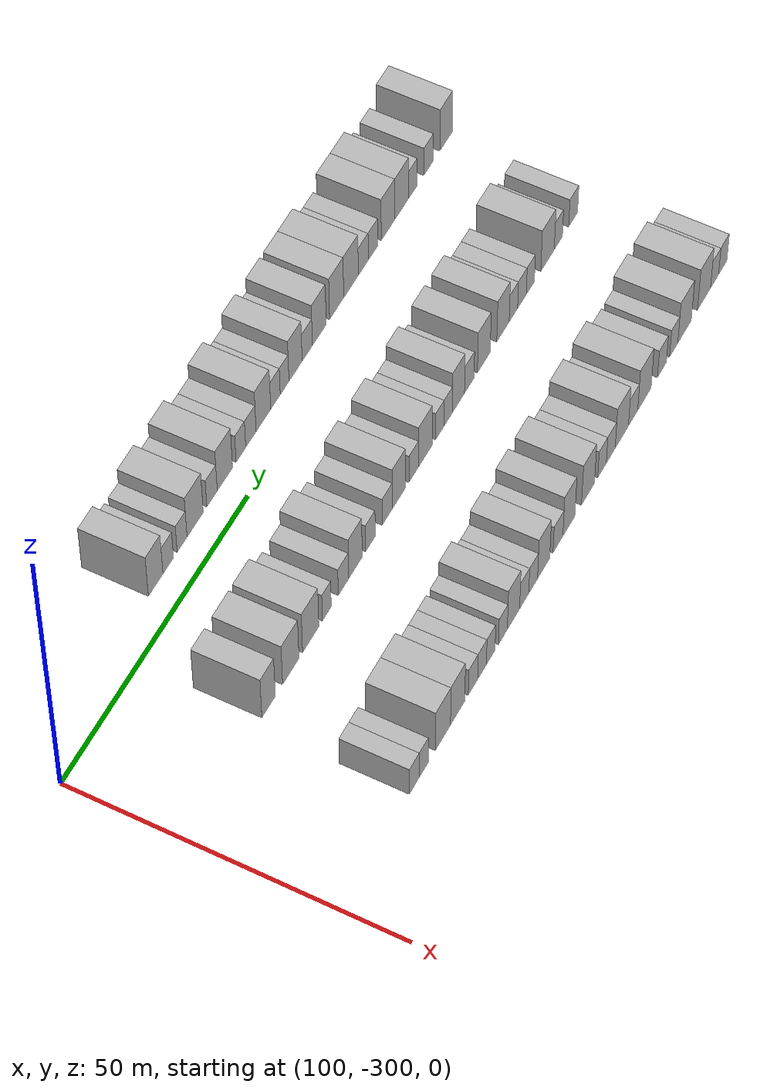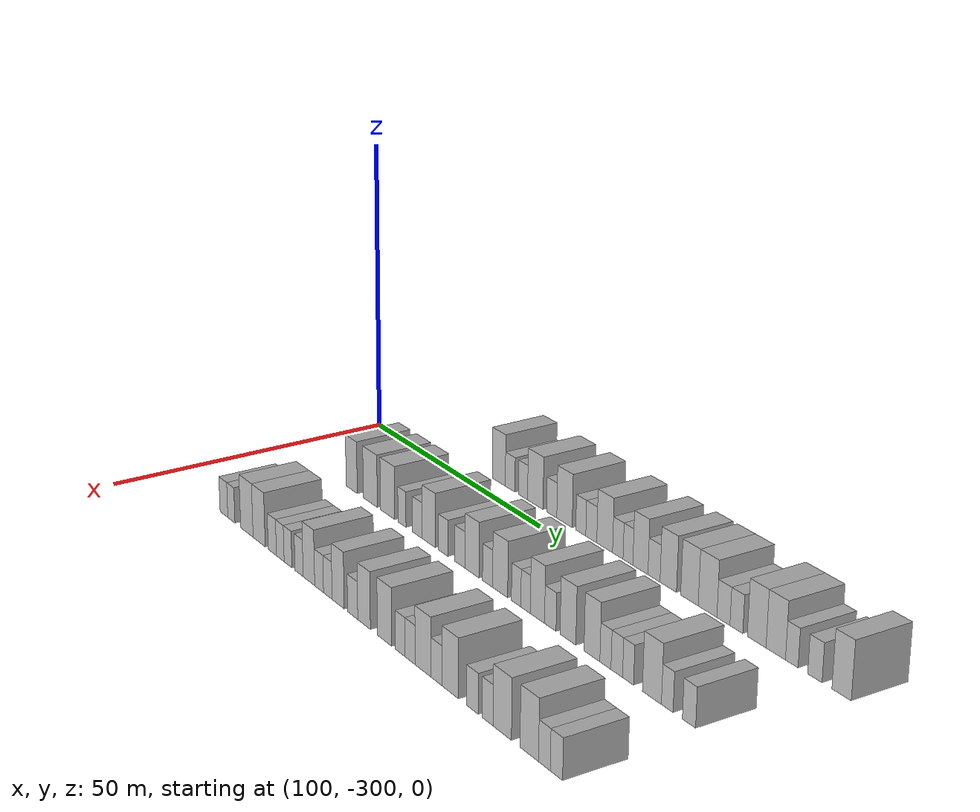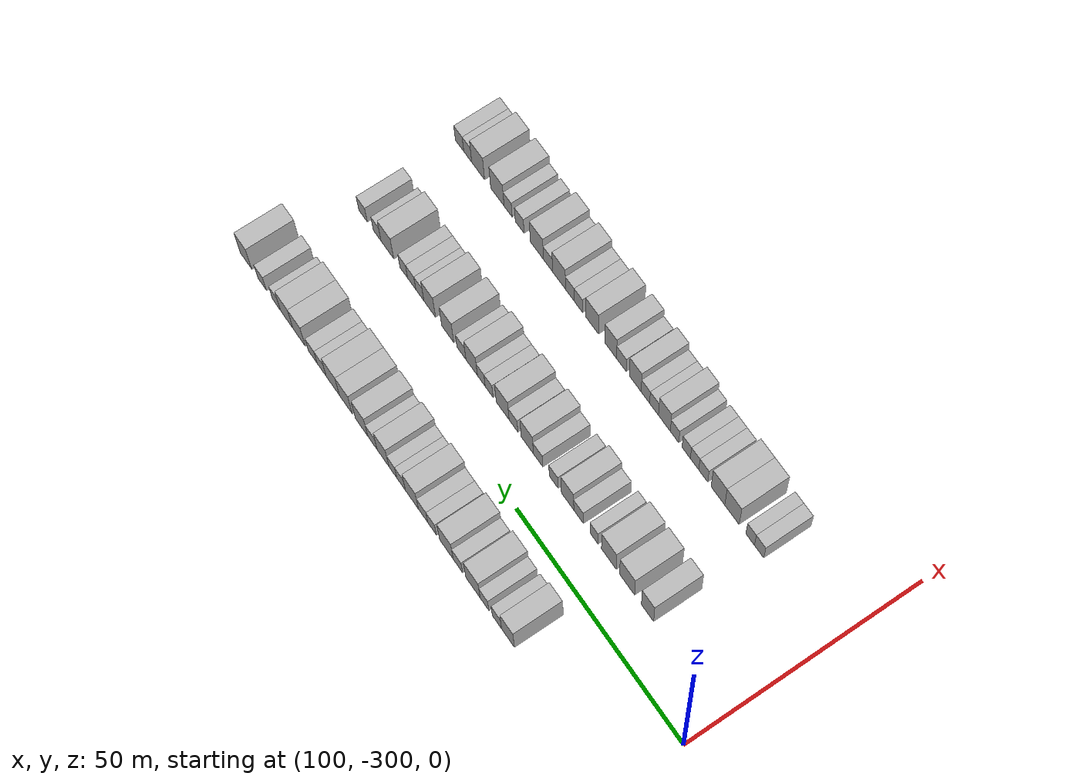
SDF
<sdf version="1.6">
 <world name="default">
  <model name="building_603">
   <static>1</static>
   <pose>91.0000 -268.0995 0 0.000000 0.000000 0.000000</pose>
   <link name="link">
    <pose>0 0 4.50 0 0 0</pose>
    <collision name="collision"><geometry><box><size>10.0000 3.9249 9.0000</size></box></geometry></collision>
    <visual name="visual">
     <cast_shadows>0</cast_shadows>
     <geometry><box><size>10.0000 3.9249 9.0000</size></box></geometry>
     <material>
      <script>
       <uri>model://HANNAS_wall/materials/scripts</uri>
       <uri>model://HANNAS_wall/materials/textures</uri>
       <name>vrc/HANNAS_wall</name>
      </script>
     </material>
    </visual>
   </link>
  </model>
  <model name="building_604">
   <static>1</static>
   <pose>91.0000 -264.7121 0 0.000000 0.000000 0.000000</pose>
   <link name="link">
    <pose>0 0 3.00 0 0 0</pose>
    <collision name="collision"><geometry><box><size>10.0000 2.8499 6.0000</size></box></geometry></collision>
    <visual name="visual">
     <cast_shadows>0</cast_shadows>
     <geometry><box><size>10.0000 2.8499 6.0000</size></box></geometry>
     <material>
      <script>
       <uri>model://HANNAS_wall/materials/scripts</uri>
       <uri>model://HANNAS_wall/materials/textures</uri>
       <name>vrc/HANNAS_wall</name>
      </script>
     </material>
    </visual>
   </link>
  </model>
  <model name="building_605">
   <static>1</static>
   <pose>91.0000 -260.9386 0 0.000000 0.000000 0.000000</pose>
   <link name="link">
    <pose>0 0 3.00 0 0 0</pose>
    <collision name="collision"><geometry><box><size>10.0000 2.6971 6.0000</size></box></geometry></collision>
    <visual name="visual">
     <cast_shadows>0</cast_shadows>
     <geometry><box><size>10.0000 2.6971 6.0000</size></box></geometry>
     <material>
      <script>
       <uri>model://HANNAS_wall/materials/scripts</uri>
       <uri>model://HANNAS_wall/materials/textures</uri>
       <name>vrc/HANNAS_wall</name>
      </script>
     </material>
    </visual>
   </link>
  </model>
  <model name="building_606">
   <static>1</static>
   <pose>91.0000 -257.3744 0 0.000000 0.000000 0.000000</pose>
   <link name="link">
    <pose>0 0 4.50 0 0 0</pose>
    <collision name="collision"><geometry><box><size>10.0000 4.4314 9.0000</size></box></geometry></collision>
    <visual name="visual">
     <cast_shadows>0</cast_shadows>
     <geometry><box><size>10.0000 4.4314 9.0000</size></box></geometry>
     <material>
      <script>
       <uri>model://HANNAS_wall/materials/scripts</uri>
       <uri>model://HANNAS_wall/materials/textures</uri>
       <name>vrc/HANNAS_wall</name>
      </script>
     </material>
    </visual>
   </link>
  </model>
  <model name="building_607">
   <static>1</static>
   <pose>91.0000 -252.7172 0 0.000000 0.000000 0.000000</pose>
   <link name="link">
    <pose>0 0 3.00 0 0 0</pose>
    <collision name="collision"><geometry><box><size>10.0000 2.8830 6.0000</size></box></geometry></collision>
    <visual name="visual">
     <cast_shadows>0</cast_shadows>
     <geometry><box><size>10.0000 2.8830 6.0000</size></box></geometry>
     <material>
      <script>
       <uri>model://HANNAS_wall/materials/scripts</uri>
       <uri>model://HANNAS_wall/materials/textures</uri>
       <name>vrc/HANNAS_wall</name>
      </script>
     </material>
    </visual>
   </link>
  </model>
  <model name="building_608">
   <static>1</static>
   <pose>91.0000 -249.1520 0 0.000000 0.000000 0.000000</pose>
   <link name="link">
    <pose>0 0 4.50 0 0 0</pose>
    <collision name="collision"><geometry><box><size>10.0000 4.2473 9.0000</size></box></geometry></collision>
    <visual name="visual">
     <cast_shadows>0</cast_shadows>
     <geometry><box><size>10.0000 4.2473 9.0000</size></box></geometry>
     <material>
      <script>
       <uri>model://HANNAS_wall/materials/scripts</uri>
       <uri>model://HANNAS_wall/materials/textures</uri>
       <name>vrc/HANNAS_wall</name>
      </script>
     </material>
    </visual>
   </link>
  </model>
  <model name="building_609">
   <static>1</static>
   <pose>91.0000 -244.6767 0 0.000000 0.000000 0.000000</pose>
   <link name="link">
    <pose>0 0 3.00 0 0 0</pose>
    <collision name="collision"><geometry><box><size>10.0000 2.7034 6.0000</size></box></geometry></collision>
    <visual name="visual">
     <cast_shadows>0</cast_shadows>
     <geometry><box><size>10.0000 2.7034 6.0000</size></box></geometry>
     <material>
      <script>
       <uri>model://HANNAS_wall/materials/scripts</uri>
       <uri>model://HANNAS_wall/materials/textures</uri>
       <name>vrc/HANNAS_wall</name>
      </script>
     </material>
    </visual>
   </link>
  </model>
  <model name="building_610">
   <static>1</static>
   <pose>91.0000 -241.8586 0 0.000000 0.000000 0.000000</pose>
   <link name="link">
    <pose>0 0 3.00 0 0 0</pose>
    <collision name="collision"><geometry><box><size>10.0000 2.9328 6.0000</size></box></geometry></collision>
    <visual name="visual">
     <cast_shadows>0</cast_shadows>
     <geometry><box><size>10.0000 2.9328 6.0000</size></box></geometry>
     <material>
      <script>
       <uri>model://HANNAS_wall/materials/scripts</uri>
       <uri>model://HANNAS_wall/materials/textures</uri>
       <name>vrc/HANNAS_wall</name>
      </script>
     </material>
    </visual>
   </link>
  </model>
  <model name="building_611">
   <static>1</static>
   <pose>91.0000 -238.3158 0 0.000000 0.000000 0.000000</pose>
   <link name="link">
    <pose>0 0 4.50 0 0 0</pose>
    <collision name="collision"><geometry><box><size>10.0000 4.1528 9.0000</size></box></geometry></collision>
    <visual name="visual">
     <cast_shadows>0</cast_shadows>
     <geometry><box><size>10.0000 4.1528 9.0000</size></box></geometry>
     <material>
      <script>
       <uri>model://HANNAS_wall/materials/scripts</uri>
       <uri>model://HANNAS_wall/materials/textures</uri>
       <name>vrc/HANNAS_wall</name>
      </script>
     </material>
    </visual>
   </link>
  </model>
  <model name="building_612">
   <static>1</static>
   <pose>91.0000 -234.8819 0 0.000000 0.000000 0.000000</pose>
   <link name="link">
    <pose>0 0 3.00 0 0 0</pose>
    <collision name="collision"><geometry><box><size>10.0000 2.7151 6.0000</size></box></geometry></collision>
    <visual name="visual">
     <cast_shadows>0</cast_shadows>
     <geometry><box><size>10.0000 2.7151 6.0000</size></box></geometry>
     <material>
      <script>
       <uri>model://HANNAS_wall/materials/scripts</uri>
       <uri>model://HANNAS_wall/materials/textures</uri>
       <name>vrc/HANNAS_wall</name>
      </script>
     </material>
    </visual>
   </link>
  </model>
  <model name="building_613">
   <static>1</static>
   <pose>91.0000 -232.2757 0 0.000000 0.000000 0.000000</pose>
   <link name="link">
    <pose>0 0 3.00 0 0 0</pose>
    <collision name="collision"><geometry><box><size>10.0000 2.4972 6.0000</size></box></geometry></collision>
    <visual name="visual">
     <cast_shadows>0</cast_shadows>
     <geometry><box><size>10.0000 2.4972 6.0000</size></box></geometry>
     <material>
      <script>
       <uri>model://HANNAS_wall/materials/scripts</uri>
       <uri>model://HANNAS_wall/materials/textures</uri>
       <name>vrc/HANNAS_wall</name>
      </script>
     </material>
    </visual>
   </link>
  </model>
  <model name="building_614">
   <static>1</static>
   <pose>91.0000 -229.1282 0 0.000000 0.000000 0.000000</pose>
   <link name="link">
    <pose>0 0 4.50 0 0 0</pose>
    <collision name="collision"><geometry><box><size>10.0000 3.7979 9.0000</size></box></geometry></collision>
    <visual name="visual">
     <cast_shadows>0</cast_shadows>
     <geometry><box><size>10.0000 3.7979 9.0000</size></box></geometry>
     <material>
      <script>
       <uri>model://HANNAS_wall/materials/scripts</uri>
       <uri>model://HANNAS_wall/materials/textures</uri>
       <name>vrc/HANNAS_wall</name>
      </script>
     </material>
    </visual>
   </link>
  </model>
  <model name="building_615">
   <static>1</static>
   <pose>91.0000 -225.7379 0 0.000000 0.000000 0.000000</pose>
   <link name="link">
    <pose>0 0 3.00 0 0 0</pose>
    <collision name="collision"><geometry><box><size>10.0000 2.9825 6.0000</size></box></geometry></collision>
    <visual name="visual">
     <cast_shadows>0</cast_shadows>
     <geometry><box><size>10.0000 2.9825 6.0000</size></box></geometry>
     <material>
      <script>
       <uri>model://HANNAS_wall/materials/scripts</uri>
       <uri>model://HANNAS_wall/materials/textures</uri>
       <name>vrc/HANNAS_wall</name>
      </script>
     </material>
    </visual>
   </link>
  </model>
  <model name="building_616">
   <static>1</static>
   <pose>91.0000 -222.2377 0 0.000000 0.000000 0.000000</pose>
   <link name="link">
    <pose>0 0 4.50 0 0 0</pose>
    <collision name="collision"><geometry><box><size>10.0000 4.0180 9.0000</size></box></geometry></collision>
    <visual name="visual">
     <cast_shadows>0</cast_shadows>
     <geometry><box><size>10.0000 4.0180 9.0000</size></box></geometry>
     <material>
      <script>
       <uri>model://HANNAS_wall/materials/scripts</uri>
       <uri>model://HANNAS_wall/materials/textures</uri>
       <name>vrc/HANNAS_wall</name>
      </script>
     </material>
    </visual>
   </link>
  </model>
  <model name="building_617">
   <static>1</static>
   <pose>91.0000 -217.1501 0 0.000000 0.000000 0.000000</pose>
   <link name="link">
    <pose>0 0 4.50 0 0 0</pose>
    <collision name="collision"><geometry><box><size>10.0000 4.1571 9.0000</size></box></geometry></collision>
    <visual name="visual">
     <cast_shadows>0</cast_shadows>
     <geometry><box><size>10.0000 4.1571 9.0000</size></box></geometry>
     <material>
      <script>
       <uri>model://HANNAS_wall/materials/scripts</uri>
       <uri>model://HANNAS_wall/materials/textures</uri>
       <name>vrc/HANNAS_wall</name>
      </script>
     </material>
    </visual>
   </link>
  </model>
  <model name="building_618">
   <static>1</static>
   <pose>91.0000 -212.9019 0 0.000000 0.000000 0.000000</pose>
   <link name="link">
    <pose>0 0 4.50 0 0 0</pose>
    <collision name="collision"><geometry><box><size>10.0000 4.3393 9.0000</size></box></geometry></collision>
    <visual name="visual">
     <cast_shadows>0</cast_shadows>
     <geometry><box><size>10.0000 4.3393 9.0000</size></box></geometry>
     <material>
      <script>
       <uri>model://HANNAS_wall/materials/scripts</uri>
       <uri>model://HANNAS_wall/materials/textures</uri>
       <name>vrc/HANNAS_wall</name>
      </script>
     </material>
    </visual>
   </link>
  </model>
  <model name="building_619">
   <static>1</static>
   <pose>91.0000 -209.2431 0 0.000000 0.000000 0.000000</pose>
   <link name="link">
    <pose>0 0 3.00 0 0 0</pose>
    <collision name="collision"><geometry><box><size>10.0000 2.9784 6.0000</size></box></geometry></collision>
    <visual name="visual">
     <cast_shadows>0</cast_shadows>
     <geometry><box><size>10.0000 2.9784 6.0000</size></box></geometry>
     <material>
      <script>
       <uri>model://HANNAS_wall/materials/scripts</uri>
       <uri>model://HANNAS_wall/materials/textures</uri>
       <name>vrc/HANNAS_wall</name>
      </script>
     </material>
    </visual>
   </link>
  </model>
  <model name="building_620">
   <static>1</static>
   <pose>91.0000 -206.3097 0 0.000000 0.000000 0.000000</pose>
   <link name="link">
    <pose>0 0 3.00 0 0 0</pose>
    <collision name="collision"><geometry><box><size>10.0000 2.8884 6.0000</size></box></geometry></collision>
    <visual name="visual">
     <cast_shadows>0</cast_shadows>
     <geometry><box><size>10.0000 2.8884 6.0000</size></box></geometry>
     <material>
      <script>
       <uri>model://HANNAS_wall/materials/scripts</uri>
       <uri>model://HANNAS_wall/materials/textures</uri>
       <name>vrc/HANNAS_wall</name>
      </script>
     </material>
    </visual>
   </link>
  </model>
  <model name="building_621">
   <static>1</static>
   <pose>91.0000 -201.8108 0 0.000000 0.000000 0.000000</pose>
   <link name="link">
    <pose>0 0 4.50 0 0 0</pose>
    <collision name="collision"><geometry><box><size>10.0000 4.1095 9.0000</size></box></geometry></collision>
    <visual name="visual">
     <cast_shadows>0</cast_shadows>
     <geometry><box><size>10.0000 4.1095 9.0000</size></box></geometry>
     <material>
      <script>
       <uri>model://HANNAS_wall/materials/scripts</uri>
       <uri>model://HANNAS_wall/materials/textures</uri>
       <name>vrc/HANNAS_wall</name>
      </script>
     </material>
    </visual>
   </link>
  </model>
  <model name="building_622">
   <static>1</static>
   <pose>91.0000 -197.6690 0 0.000000 0.000000 0.000000</pose>
   <link name="link">
    <pose>0 0 4.50 0 0 0</pose>
    <collision name="collision"><geometry><box><size>10.0000 4.1741 9.0000</size></box></geometry></collision>
    <visual name="visual">
     <cast_shadows>0</cast_shadows>
     <geometry><box><size>10.0000 4.1741 9.0000</size></box></geometry>
     <material>
      <script>
       <uri>model://HANNAS_wall/materials/scripts</uri>
       <uri>model://HANNAS_wall/materials/textures</uri>
       <name>vrc/HANNAS_wall</name>
      </script>
     </material>
    </visual>
   </link>
  </model>
  <model name="building_623">
   <static>1</static>
   <pose>91.0000 -194.2499 0 0.000000 0.000000 0.000000</pose>
   <link name="link">
    <pose>0 0 3.00 0 0 0</pose>
    <collision name="collision"><geometry><box><size>10.0000 2.6641 6.0000</size></box></geometry></collision>
    <visual name="visual">
     <cast_shadows>0</cast_shadows>
     <geometry><box><size>10.0000 2.6641 6.0000</size></box></geometry>
     <material>
      <script>
       <uri>model://HANNAS_wall/materials/scripts</uri>
       <uri>model://HANNAS_wall/materials/textures</uri>
       <name>vrc/HANNAS_wall</name>
      </script>
     </material>
    </visual>
   </link>
  </model>
  <model name="building_624">
   <static>1</static>
   <pose>91.0000 -189.4434 0 0.000000 0.000000 0.000000</pose>
   <link name="link">
    <pose>0 0 3.00 0 0 0</pose>
    <collision name="collision"><geometry><box><size>10.0000 2.9491 6.0000</size></box></geometry></collision>
    <visual name="visual">
     <cast_shadows>0</cast_shadows>
     <geometry><box><size>10.0000 2.9491 6.0000</size></box></geometry>
     <material>
      <script>
       <uri>model://HANNAS_wall/materials/scripts</uri>
       <uri>model://HANNAS_wall/materials/textures</uri>
       <name>vrc/HANNAS_wall</name>
      </script>
     </material>
    </visual>
   </link>
  </model>
  <model name="building_625">
   <static>1</static>
   <pose>91.0000 -184.0302 0 0.000000 0.000000 0.000000</pose>
   <link name="link">
    <pose>0 0 4.50 0 0 0</pose>
    <collision name="collision"><geometry><box><size>10.0000 3.8772 9.0000</size></box></geometry></collision>
    <visual name="visual">
     <cast_shadows>0</cast_shadows>
     <geometry><box><size>10.0000 3.8772 9.0000</size></box></geometry>
     <material>
      <script>
       <uri>model://HANNAS_wall/materials/scripts</uri>
       <uri>model://HANNAS_wall/materials/textures</uri>
       <name>vrc/HANNAS_wall</name>
      </script>
     </material>
    </visual>
   </link>
  </model>
  <model name="building_793">
   <static>1</static>
   <pose>113.0000 -277.9157 0 0.000000 0.000000 0.000000</pose>
   <link name="link">
    <pose>0 0 4.50 0 0 0</pose>
    <collision name="collision"><geometry><box><size>10.0000 3.6483 9.0000</size></box></geometry></collision>
    <visual name="visual">
     <cast_shadows>0</cast_shadows>
     <geometry><box><size>10.0000 3.6483 9.0000</size></box></geometry>
     <material>
      <script>
       <uri>model://HANNAS_wall/materials/scripts</uri>
       <uri>model://HANNAS_wall/materials/textures</uri>
       <name>vrc/HANNAS_wall</name>
      </script>
     </material>
    </visual>
   </link>
  </model>
  <model name="building_794">
   <static>1</static>
   <pose>113.0000 -271.8436 0 0.000000 0.000000 0.000000</pose>
   <link name="link">
    <pose>0 0 4.50 0 0 0</pose>
    <collision name="collision"><geometry><box><size>10.0000 4.4959 9.0000</size></box></geometry></collision>
    <visual name="visual">
     <cast_shadows>0</cast_shadows>
     <geometry><box><size>10.0000 4.4959 9.0000</size></box></geometry>
     <material>
      <script>
       <uri>model://HANNAS_wall/materials/scripts</uri>
       <uri>model://HANNAS_wall/materials/textures</uri>
       <name>vrc/HANNAS_wall</name>
      </script>
     </material>
    </visual>
   </link>
  </model>
  <model name="building_795">
   <static>1</static>
   <pose>113.0000 -266.3493 0 0.000000 0.000000 0.000000</pose>
   <link name="link">
    <pose>0 0 4.50 0 0 0</pose>
    <collision name="collision"><geometry><box><size>10.0000 4.4927 9.0000</size></box></geometry></collision>
    <visual name="visual">
     <cast_shadows>0</cast_shadows>
     <geometry><box><size>10.0000 4.4927 9.0000</size></box></geometry>
     <material>
      <script>
       <uri>model://HANNAS_wall/materials/scripts</uri>
       <uri>model://HANNAS_wall/materials/textures</uri>
       <name>vrc/HANNAS_wall</name>
      </script>
     </material>
    </visual>
   </link>
  </model>
  <model name="building_796">
   <static>1</static>
   <pose>113.0000 -261.8717 0 0.000000 0.000000 0.000000</pose>
   <link name="link">
    <pose>0 0 3.00 0 0 0</pose>
    <collision name="collision"><geometry><box><size>10.0000 2.4626 6.0000</size></box></geometry></collision>
    <visual name="visual">
     <cast_shadows>0</cast_shadows>
     <geometry><box><size>10.0000 2.4626 6.0000</size></box></geometry>
     <material>
      <script>
       <uri>model://HANNAS_wall/materials/scripts</uri>
       <uri>model://HANNAS_wall/materials/textures</uri>
       <name>vrc/HANNAS_wall</name>
      </script>
     </material>
    </visual>
   </link>
  </model>
  <model name="building_797">
   <static>1</static>
   <pose>113.0000 -257.1735 0 0.000000 0.000000 0.000000</pose>
   <link name="link">
    <pose>0 0 3.00 0 0 0</pose>
    <collision name="collision"><geometry><box><size>10.0000 2.9337 6.0000</size></box></geometry></collision>
    <visual name="visual">
     <cast_shadows>0</cast_shadows>
     <geometry><box><size>10.0000 2.9337 6.0000</size></box></geometry>
     <material>
      <script>
       <uri>model://HANNAS_wall/materials/scripts</uri>
       <uri>model://HANNAS_wall/materials/textures</uri>
       <name>vrc/HANNAS_wall</name>
      </script>
     </material>
    </visual>
   </link>
  </model>
  <model name="building_798">
   <static>1</static>
   <pose>113.0000 -253.8008 0 0.000000 0.000000 0.000000</pose>
   <link name="link">
    <pose>0 0 4.50 0 0 0</pose>
    <collision name="collision"><geometry><box><size>10.0000 3.8117 9.0000</size></box></geometry></collision>
    <visual name="visual">
     <cast_shadows>0</cast_shadows>
     <geometry><box><size>10.0000 3.8117 9.0000</size></box></geometry>
     <material>
      <script>
       <uri>model://HANNAS_wall/materials/scripts</uri>
       <uri>model://HANNAS_wall/materials/textures</uri>
       <name>vrc/HANNAS_wall</name>
      </script>
     </material>
    </visual>
   </link>
  </model>
  <model name="building_799">
   <static>1</static>
   <pose>113.0000 -249.5337 0 0.000000 0.000000 0.000000</pose>
   <link name="link">
    <pose>0 0 3.00 0 0 0</pose>
    <collision name="collision"><geometry><box><size>10.0000 2.7225 6.0000</size></box></geometry></collision>
    <visual name="visual">
     <cast_shadows>0</cast_shadows>
     <geometry><box><size>10.0000 2.7225 6.0000</size></box></geometry>
     <material>
      <script>
       <uri>model://HANNAS_wall/materials/scripts</uri>
       <uri>model://HANNAS_wall/materials/textures</uri>
       <name>vrc/HANNAS_wall</name>
      </script>
     </material>
    </visual>
   </link>
  </model>
  <model name="building_800">
   <static>1</static>
   <pose>113.0000 -244.7125 0 0.000000 0.000000 0.000000</pose>
   <link name="link">
    <pose>0 0 3.00 0 0 0</pose>
    <collision name="collision"><geometry><box><size>10.0000 2.9200 6.0000</size></box></geometry></collision>
    <visual name="visual">
     <cast_shadows>0</cast_shadows>
     <geometry><box><size>10.0000 2.9200 6.0000</size></box></geometry>
     <material>
      <script>
       <uri>model://HANNAS_wall/materials/scripts</uri>
       <uri>model://HANNAS_wall/materials/textures</uri>
       <name>vrc/HANNAS_wall</name>
      </script>
     </material>
    </visual>
   </link>
  </model>
  <model name="building_801">
   <static>1</static>
   <pose>113.0000 -241.3392 0 0.000000 0.000000 0.000000</pose>
   <link name="link">
    <pose>0 0 4.50 0 0 0</pose>
    <collision name="collision"><geometry><box><size>10.0000 3.8267 9.0000</size></box></geometry></collision>
    <visual name="visual">
     <cast_shadows>0</cast_shadows>
     <geometry><box><size>10.0000 3.8267 9.0000</size></box></geometry>
     <material>
      <script>
       <uri>model://HANNAS_wall/materials/scripts</uri>
       <uri>model://HANNAS_wall/materials/textures</uri>
       <name>vrc/HANNAS_wall</name>
      </script>
     </material>
    </visual>
   </link>
  </model>
  <model name="building_802">
   <static>1</static>
   <pose>113.0000 -237.0411 0 0.000000 0.000000 0.000000</pose>
   <link name="link">
    <pose>0 0 3.00 0 0 0</pose>
    <collision name="collision"><geometry><box><size>10.0000 2.7694 6.0000</size></box></geometry></collision>
    <visual name="visual">
     <cast_shadows>0</cast_shadows>
     <geometry><box><size>10.0000 2.7694 6.0000</size></box></geometry>
     <material>
      <script>
       <uri>model://HANNAS_wall/materials/scripts</uri>
       <uri>model://HANNAS_wall/materials/textures</uri>
       <name>vrc/HANNAS_wall</name>
      </script>
     </material>
    </visual>
   </link>
  </model>
  <model name="building_803">
   <static>1</static>
   <pose>113.0000 -233.6354 0 0.000000 0.000000 0.000000</pose>
   <link name="link">
    <pose>0 0 4.50 0 0 0</pose>
    <collision name="collision"><geometry><box><size>10.0000 4.0419 9.0000</size></box></geometry></collision>
    <visual name="visual">
     <cast_shadows>0</cast_shadows>
     <geometry><box><size>10.0000 4.0419 9.0000</size></box></geometry>
     <material>
      <script>
       <uri>model://HANNAS_wall/materials/scripts</uri>
       <uri>model://HANNAS_wall/materials/textures</uri>
       <name>vrc/HANNAS_wall</name>
      </script>
     </material>
    </visual>
   </link>
  </model>
  <model name="building_804">
   <static>1</static>
   <pose>113.0000 -229.3745 0 0.000000 0.000000 0.000000</pose>
   <link name="link">
    <pose>0 0 3.00 0 0 0</pose>
    <collision name="collision"><geometry><box><size>10.0000 2.4799 6.0000</size></box></geometry></collision>
    <visual name="visual">
     <cast_shadows>0</cast_shadows>
     <geometry><box><size>10.0000 2.4799 6.0000</size></box></geometry>
     <material>
      <script>
       <uri>model://HANNAS_wall/materials/scripts</uri>
       <uri>model://HANNAS_wall/materials/textures</uri>
       <name>vrc/HANNAS_wall</name>
      </script>
     </material>
    </visual>
   </link>
  </model>
  <model name="building_805">
   <static>1</static>
   <pose>113.0000 -226.9054 0 0.000000 0.000000 0.000000</pose>
   <link name="link">
    <pose>0 0 3.00 0 0 0</pose>
    <collision name="collision"><geometry><box><size>10.0000 2.4583 6.0000</size></box></geometry></collision>
    <visual name="visual">
     <cast_shadows>0</cast_shadows>
     <geometry><box><size>10.0000 2.4583 6.0000</size></box></geometry>
     <material>
      <script>
       <uri>model://HANNAS_wall/materials/scripts</uri>
       <uri>model://HANNAS_wall/materials/textures</uri>
       <name>vrc/HANNAS_wall</name>
      </script>
     </material>
    </visual>
   </link>
  </model>
  <model name="building_806">
   <static>1</static>
   <pose>113.0000 -223.8485 0 0.000000 0.000000 0.000000</pose>
   <link name="link">
    <pose>0 0 4.50 0 0 0</pose>
    <collision name="collision"><geometry><box><size>10.0000 3.6555 9.0000</size></box></geometry></collision>
    <visual name="visual">
     <cast_shadows>0</cast_shadows>
     <geometry><box><size>10.0000 3.6555 9.0000</size></box></geometry>
     <material>
      <script>
       <uri>model://HANNAS_wall/materials/scripts</uri>
       <uri>model://HANNAS_wall/materials/textures</uri>
       <name>vrc/HANNAS_wall</name>
      </script>
     </material>
    </visual>
   </link>
  </model>
  <model name="building_807">
   <static>1</static>
   <pose>113.0000 -220.5719 0 0.000000 0.000000 0.000000</pose>
   <link name="link">
    <pose>0 0 3.00 0 0 0</pose>
    <collision name="collision"><geometry><box><size>10.0000 2.8979 6.0000</size></box></geometry></collision>
    <visual name="visual">
     <cast_shadows>0</cast_shadows>
     <geometry><box><size>10.0000 2.8979 6.0000</size></box></geometry>
     <material>
      <script>
       <uri>model://HANNAS_wall/materials/scripts</uri>
       <uri>model://HANNAS_wall/materials/textures</uri>
       <name>vrc/HANNAS_wall</name>
      </script>
     </material>
    </visual>
   </link>
  </model>
  <model name="building_808">
   <static>1</static>
   <pose>113.0000 -216.1833 0 0.000000 0.000000 0.000000</pose>
   <link name="link">
    <pose>0 0 4.50 0 0 0</pose>
    <collision name="collision"><geometry><box><size>10.0000 3.8793 9.0000</size></box></geometry></collision>
    <visual name="visual">
     <cast_shadows>0</cast_shadows>
     <geometry><box><size>10.0000 3.8793 9.0000</size></box></geometry>
     <material>
      <script>
       <uri>model://HANNAS_wall/materials/scripts</uri>
       <uri>model://HANNAS_wall/materials/textures</uri>
       <name>vrc/HANNAS_wall</name>
      </script>
     </material>
    </visual>
   </link>
  </model>
  <model name="building_809">
   <static>1</static>
   <pose>113.0000 -210.3559 0 0.000000 0.000000 0.000000</pose>
   <link name="link">
    <pose>0 0 4.50 0 0 0</pose>
    <collision name="collision"><geometry><box><size>10.0000 3.7754 9.0000</size></box></geometry></collision>
    <visual name="visual">
     <cast_shadows>0</cast_shadows>
     <geometry><box><size>10.0000 3.7754 9.0000</size></box></geometry>
     <material>
      <script>
       <uri>model://HANNAS_wall/materials/scripts</uri>
       <uri>model://HANNAS_wall/materials/textures</uri>
       <name>vrc/HANNAS_wall</name>
      </script>
     </material>
    </visual>
   </link>
  </model>
  <model name="building_810">
   <static>1</static>
   <pose>113.0000 -207.1632 0 0.000000 0.000000 0.000000</pose>
   <link name="link">
    <pose>0 0 3.00 0 0 0</pose>
    <collision name="collision"><geometry><box><size>10.0000 2.6101 6.0000</size></box></geometry></collision>
    <visual name="visual">
     <cast_shadows>0</cast_shadows>
     <geometry><box><size>10.0000 2.6101 6.0000</size></box></geometry>
     <material>
      <script>
       <uri>model://HANNAS_wall/materials/scripts</uri>
       <uri>model://HANNAS_wall/materials/textures</uri>
       <name>vrc/HANNAS_wall</name>
      </script>
     </material>
    </visual>
   </link>
  </model>
  <model name="building_811">
   <static>1</static>
   <pose>113.0000 -204.5178 0 0.000000 0.000000 0.000000</pose>
   <link name="link">
    <pose>0 0 3.00 0 0 0</pose>
    <collision name="collision"><geometry><box><size>10.0000 2.6806 6.0000</size></box></geometry></collision>
    <visual name="visual">
     <cast_shadows>0</cast_shadows>
     <geometry><box><size>10.0000 2.6806 6.0000</size></box></geometry>
     <material>
      <script>
       <uri>model://HANNAS_wall/materials/scripts</uri>
       <uri>model://HANNAS_wall/materials/textures</uri>
       <name>vrc/HANNAS_wall</name>
      </script>
     </material>
    </visual>
   </link>
  </model>
  <model name="building_812">
   <static>1</static>
   <pose>113.0000 -201.9190 0 0.000000 0.000000 0.000000</pose>
   <link name="link">
    <pose>0 0 3.00 0 0 0</pose>
    <collision name="collision"><geometry><box><size>10.0000 2.5171 6.0000</size></box></geometry></collision>
    <visual name="visual">
     <cast_shadows>0</cast_shadows>
     <geometry><box><size>10.0000 2.5171 6.0000</size></box></geometry>
     <material>
      <script>
       <uri>model://HANNAS_wall/materials/scripts</uri>
       <uri>model://HANNAS_wall/materials/textures</uri>
       <name>vrc/HANNAS_wall</name>
      </script>
     </material>
    </visual>
   </link>
  </model>
  <model name="building_813">
   <static>1</static>
   <pose>113.0000 -196.5554 0 0.000000 0.000000 0.000000</pose>
   <link name="link">
    <pose>0 0 4.50 0 0 0</pose>
    <collision name="collision"><geometry><box><size>10.0000 4.2101 9.0000</size></box></geometry></collision>
    <visual name="visual">
     <cast_shadows>0</cast_shadows>
     <geometry><box><size>10.0000 4.2101 9.0000</size></box></geometry>
     <material>
      <script>
       <uri>model://HANNAS_wall/materials/scripts</uri>
       <uri>model://HANNAS_wall/materials/textures</uri>
       <name>vrc/HANNAS_wall</name>
      </script>
     </material>
    </visual>
   </link>
  </model>
  <model name="building_814">
   <static>1</static>
   <pose>113.0000 -193.1737 0 0.000000 0.000000 0.000000</pose>
   <link name="link">
    <pose>0 0 3.00 0 0 0</pose>
    <collision name="collision"><geometry><box><size>10.0000 2.5533 6.0000</size></box></geometry></collision>
    <visual name="visual">
     <cast_shadows>0</cast_shadows>
     <geometry><box><size>10.0000 2.5533 6.0000</size></box></geometry>
     <material>
      <script>
       <uri>model://HANNAS_wall/materials/scripts</uri>
       <uri>model://HANNAS_wall/materials/textures</uri>
       <name>vrc/HANNAS_wall</name>
      </script>
     </material>
    </visual>
   </link>
  </model>
  <model name="building_815">
   <static>1</static>
   <pose>113.0000 -188.4891 0 0.000000 0.000000 0.000000</pose>
   <link name="link">
    <pose>0 0 3.00 0 0 0</pose>
    <collision name="collision"><geometry><box><size>10.0000 2.8161 6.0000</size></box></geometry></collision>
    <visual name="visual">
     <cast_shadows>0</cast_shadows>
     <geometry><box><size>10.0000 2.8161 6.0000</size></box></geometry>
     <material>
      <script>
       <uri>model://HANNAS_wall/materials/scripts</uri>
       <uri>model://HANNAS_wall/materials/textures</uri>
       <name>vrc/HANNAS_wall</name>
      </script>
     </material>
    </visual>
   </link>
  </model>
  <model name="building_978">
   <static>1</static>
   <pose>135.0000 -279.8644 0 0.000000 0.000000 0.000000</pose>
   <link name="link">
    <pose>0 0 3.00 0 0 0</pose>
    <collision name="collision"><geometry><box><size>10.0000 2.7611 6.0000</size></box></geometry></collision>
    <visual name="visual">
     <cast_shadows>0</cast_shadows>
     <geometry><box><size>10.0000 2.7611 6.0000</size></box></geometry>
     <material>
      <script>
       <uri>model://HANNAS_wall/materials/scripts</uri>
       <uri>model://HANNAS_wall/materials/textures</uri>
       <name>vrc/HANNAS_wall</name>
      </script>
     </material>
    </visual>
   </link>
  </model>
  <model name="building_979">
   <static>1</static>
   <pose>135.0000 -277.2313 0 0.000000 0.000000 0.000000</pose>
   <link name="link">
    <pose>0 0 3.00 0 0 0</pose>
    <collision name="collision"><geometry><box><size>10.0000 2.5052 6.0000</size></box></geometry></collision>
    <visual name="visual">
     <cast_shadows>0</cast_shadows>
     <geometry><box><size>10.0000 2.5052 6.0000</size></box></geometry>
     <material>
      <script>
       <uri>model://HANNAS_wall/materials/scripts</uri>
       <uri>model://HANNAS_wall/materials/textures</uri>
       <name>vrc/HANNAS_wall</name>
      </script>
     </material>
    </visual>
   </link>
  </model>
  <model name="building_980">
   <static>1</static>
   <pose>135.0000 -271.8459 0 0.000000 0.000000 0.000000</pose>
   <link name="link">
    <pose>0 0 4.50 0 0 0</pose>
    <collision name="collision"><geometry><box><size>10.0000 4.2656 9.0000</size></box></geometry></collision>
    <visual name="visual">
     <cast_shadows>0</cast_shadows>
     <geometry><box><size>10.0000 4.2656 9.0000</size></box></geometry>
     <material>
      <script>
       <uri>model://HANNAS_wall/materials/scripts</uri>
       <uri>model://HANNAS_wall/materials/textures</uri>
       <name>vrc/HANNAS_wall</name>
      </script>
     </material>
    </visual>
   </link>
  </model>
  <model name="building_981">
   <static>1</static>
   <pose>135.0000 -267.6800 0 0.000000 0.000000 0.000000</pose>
   <link name="link">
    <pose>0 0 4.50 0 0 0</pose>
    <collision name="collision"><geometry><box><size>10.0000 4.0663 9.0000</size></box></geometry></collision>
    <visual name="visual">
     <cast_shadows>0</cast_shadows>
     <geometry><box><size>10.0000 4.0663 9.0000</size></box></geometry>
     <material>
      <script>
       <uri>model://HANNAS_wall/materials/scripts</uri>
       <uri>model://HANNAS_wall/materials/textures</uri>
       <name>vrc/HANNAS_wall</name>
      </script>
     </material>
    </visual>
   </link>
  </model>
  <model name="building_982">
   <static>1</static>
   <pose>135.0000 -263.2963 0 0.000000 0.000000 0.000000</pose>
   <link name="link">
    <pose>0 0 3.00 0 0 0</pose>
    <collision name="collision"><geometry><box><size>10.0000 2.7012 6.0000</size></box></geometry></collision>
    <visual name="visual">
     <cast_shadows>0</cast_shadows>
     <geometry><box><size>10.0000 2.7012 6.0000</size></box></geometry>
     <material>
      <script>
       <uri>model://HANNAS_wall/materials/scripts</uri>
       <uri>model://HANNAS_wall/materials/textures</uri>
       <name>vrc/HANNAS_wall</name>
      </script>
     </material>
    </visual>
   </link>
  </model>
  <model name="building_983">
   <static>1</static>
   <pose>135.0000 -260.6898 0 0.000000 0.000000 0.000000</pose>
   <link name="link">
    <pose>0 0 3.00 0 0 0</pose>
    <collision name="collision"><geometry><box><size>10.0000 2.5116 6.0000</size></box></geometry></collision>
    <visual name="visual">
     <cast_shadows>0</cast_shadows>
     <geometry><box><size>10.0000 2.5116 6.0000</size></box></geometry>
     <material>
      <script>
       <uri>model://HANNAS_wall/materials/scripts</uri>
       <uri>model://HANNAS_wall/materials/textures</uri>
       <name>vrc/HANNAS_wall</name>
      </script>
     </material>
    </visual>
   </link>
  </model>
  <model name="building_984">
   <static>1</static>
   <pose>135.0000 -258.1835 0 0.000000 0.000000 0.000000</pose>
   <link name="link">
    <pose>0 0 3.00 0 0 0</pose>
    <collision name="collision"><geometry><box><size>10.0000 2.5010 6.0000</size></box></geometry></collision>
    <visual name="visual">
     <cast_shadows>0</cast_shadows>
     <geometry><box><size>10.0000 2.5010 6.0000</size></box></geometry>
     <material>
      <script>
       <uri>model://HANNAS_wall/materials/scripts</uri>
       <uri>model://HANNAS_wall/materials/textures</uri>
       <name>vrc/HANNAS_wall</name>
      </script>
     </material>
    </visual>
   </link>
  </model>
  <model name="building_985">
   <static>1</static>
   <pose>135.0000 -254.6494 0 0.000000 0.000000 0.000000</pose>
   <link name="link">
    <pose>0 0 3.00 0 0 0</pose>
    <collision name="collision"><geometry><box><size>10.0000 2.5672 6.0000</size></box></geometry></collision>
    <visual name="visual">
     <cast_shadows>0</cast_shadows>
     <geometry><box><size>10.0000 2.5672 6.0000</size></box></geometry>
     <material>
      <script>
       <uri>model://HANNAS_wall/materials/scripts</uri>
       <uri>model://HANNAS_wall/materials/textures</uri>
       <name>vrc/HANNAS_wall</name>
      </script>
     </material>
    </visual>
   </link>
  </model>
  <model name="building_986">
   <static>1</static>
   <pose>135.0000 -251.5654 0 0.000000 0.000000 0.000000</pose>
   <link name="link">
    <pose>0 0 4.50 0 0 0</pose>
    <collision name="collision"><geometry><box><size>10.0000 3.6008 9.0000</size></box></geometry></collision>
    <visual name="visual">
     <cast_shadows>0</cast_shadows>
     <geometry><box><size>10.0000 3.6008 9.0000</size></box></geometry>
     <material>
      <script>
       <uri>model://HANNAS_wall/materials/scripts</uri>
       <uri>model://HANNAS_wall/materials/textures</uri>
       <name>vrc/HANNAS_wall</name>
      </script>
     </material>
    </visual>
   </link>
  </model>
  <model name="building_987">
   <static>1</static>
   <pose>135.0000 -248.4193 0 0.000000 0.000000 0.000000</pose>
   <link name="link">
    <pose>0 0 3.00 0 0 0</pose>
    <collision name="collision"><geometry><box><size>10.0000 2.6914 6.0000</size></box></geometry></collision>
    <visual name="visual">
     <cast_shadows>0</cast_shadows>
     <geometry><box><size>10.0000 2.6914 6.0000</size></box></geometry>
     <material>
      <script>
       <uri>model://HANNAS_wall/materials/scripts</uri>
       <uri>model://HANNAS_wall/materials/textures</uri>
       <name>vrc/HANNAS_wall</name>
      </script>
     </material>
    </visual>
   </link>
  </model>
  <model name="building_988">
   <static>1</static>
   <pose>135.0000 -245.7650 0 0.000000 0.000000 0.000000</pose>
   <link name="link">
    <pose>0 0 3.00 0 0 0</pose>
    <collision name="collision"><geometry><box><size>10.0000 2.6173 6.0000</size></box></geometry></collision>
    <visual name="visual">
     <cast_shadows>0</cast_shadows>
     <geometry><box><size>10.0000 2.6173 6.0000</size></box></geometry>
     <material>
      <script>
       <uri>model://HANNAS_wall/materials/scripts</uri>
       <uri>model://HANNAS_wall/materials/textures</uri>
       <name>vrc/HANNAS_wall</name>
      </script>
     </material>
    </visual>
   </link>
  </model>
  <model name="building_989">
   <static>1</static>
   <pose>135.0000 -242.6560 0 0.000000 0.000000 0.000000</pose>
   <link name="link">
    <pose>0 0 4.50 0 0 0</pose>
    <collision name="collision"><geometry><box><size>10.0000 3.6008 9.0000</size></box></geometry></collision>
    <visual name="visual">
     <cast_shadows>0</cast_shadows>
     <geometry><box><size>10.0000 3.6008 9.0000</size></box></geometry>
     <material>
      <script>
       <uri>model://HANNAS_wall/materials/scripts</uri>
       <uri>model://HANNAS_wall/materials/textures</uri>
       <name>vrc/HANNAS_wall</name>
      </script>
     </material>
    </visual>
   </link>
  </model>
  <model name="building_990">
   <static>1</static>
   <pose>135.0000 -238.3777 0 0.000000 0.000000 0.000000</pose>
   <link name="link">
    <pose>0 0 3.00 0 0 0</pose>
    <collision name="collision"><geometry><box><size>10.0000 2.9559 6.0000</size></box></geometry></collision>
    <visual name="visual">
     <cast_shadows>0</cast_shadows>
     <geometry><box><size>10.0000 2.9559 6.0000</size></box></geometry>
     <material>
      <script>
       <uri>model://HANNAS_wall/materials/scripts</uri>
       <uri>model://HANNAS_wall/materials/textures</uri>
       <name>vrc/HANNAS_wall</name>
      </script>
     </material>
    </visual>
   </link>
  </model>
  <model name="building_991">
   <static>1</static>
   <pose>135.0000 -235.0899 0 0.000000 0.000000 0.000000</pose>
   <link name="link">
    <pose>0 0 4.50 0 0 0</pose>
    <collision name="collision"><geometry><box><size>10.0000 3.6197 9.0000</size></box></geometry></collision>
    <visual name="visual">
     <cast_shadows>0</cast_shadows>
     <geometry><box><size>10.0000 3.6197 9.0000</size></box></geometry>
     <material>
      <script>
       <uri>model://HANNAS_wall/materials/scripts</uri>
       <uri>model://HANNAS_wall/materials/textures</uri>
       <name>vrc/HANNAS_wall</name>
      </script>
     </material>
    </visual>
   </link>
  </model>
  <model name="building_992">
   <static>1</static>
   <pose>135.0000 -229.2988 0 0.000000 0.000000 0.000000</pose>
   <link name="link">
    <pose>0 0 4.50 0 0 0</pose>
    <collision name="collision"><geometry><box><size>10.0000 3.9625 9.0000</size></box></geometry></collision>
    <visual name="visual">
     <cast_shadows>0</cast_shadows>
     <geometry><box><size>10.0000 3.9625 9.0000</size></box></geometry>
     <material>
      <script>
       <uri>model://HANNAS_wall/materials/scripts</uri>
       <uri>model://HANNAS_wall/materials/textures</uri>
       <name>vrc/HANNAS_wall</name>
      </script>
     </material>
    </visual>
   </link>
  </model>
  <model name="building_993">
   <static>1</static>
   <pose>135.0000 -225.0022 0 0.000000 0.000000 0.000000</pose>
   <link name="link">
    <pose>0 0 3.00 0 0 0</pose>
    <collision name="collision"><geometry><box><size>10.0000 2.6306 6.0000</size></box></geometry></collision>
    <visual name="visual">
     <cast_shadows>0</cast_shadows>
     <geometry><box><size>10.0000 2.6306 6.0000</size></box></geometry>
     <material>
      <script>
       <uri>model://HANNAS_wall/materials/scripts</uri>
       <uri>model://HANNAS_wall/materials/textures</uri>
       <name>vrc/HANNAS_wall</name>
      </script>
     </material>
    </visual>
   </link>
  </model>
  <model name="building_994">
   <static>1</static>
   <pose>135.0000 -222.3229 0 0.000000 0.000000 0.000000</pose>
   <link name="link">
    <pose>0 0 3.00 0 0 0</pose>
    <collision name="collision"><geometry><box><size>10.0000 2.7280 6.0000</size></box></geometry></collision>
    <visual name="visual">
     <cast_shadows>0</cast_shadows>
     <geometry><box><size>10.0000 2.7280 6.0000</size></box></geometry>
     <material>
      <script>
       <uri>model://HANNAS_wall/materials/scripts</uri>
       <uri>model://HANNAS_wall/materials/textures</uri>
       <name>vrc/HANNAS_wall</name>
      </script>
     </material>
    </visual>
   </link>
  </model>
  <model name="building_995">
   <static>1</static>
   <pose>135.0000 -218.9010 0 0.000000 0.000000 0.000000</pose>
   <link name="link">
    <pose>0 0 4.50 0 0 0</pose>
    <collision name="collision"><geometry><box><size>10.0000 4.1159 9.0000</size></box></geometry></collision>
    <visual name="visual">
     <cast_shadows>0</cast_shadows>
     <geometry><box><size>10.0000 4.1159 9.0000</size></box></geometry>
     <material>
      <script>
       <uri>model://HANNAS_wall/materials/scripts</uri>
       <uri>model://HANNAS_wall/materials/textures</uri>
       <name>vrc/HANNAS_wall</name>
      </script>
     </material>
    </visual>
   </link>
  </model>
  <model name="building_996">
   <static>1</static>
   <pose>135.0000 -215.3901 0 0.000000 0.000000 0.000000</pose>
   <link name="link">
    <pose>0 0 3.00 0 0 0</pose>
    <collision name="collision"><geometry><box><size>10.0000 2.9061 6.0000</size></box></geometry></collision>
    <visual name="visual">
     <cast_shadows>0</cast_shadows>
     <geometry><box><size>10.0000 2.9061 6.0000</size></box></geometry>
     <material>
      <script>
       <uri>model://HANNAS_wall/materials/scripts</uri>
       <uri>model://HANNAS_wall/materials/textures</uri>
       <name>vrc/HANNAS_wall</name>
      </script>
     </material>
    </visual>
   </link>
  </model>
  <model name="building_997">
   <static>1</static>
   <pose>135.0000 -211.8301 0 0.000000 0.000000 0.000000</pose>
   <link name="link">
    <pose>0 0 4.50 0 0 0</pose>
    <collision name="collision"><geometry><box><size>10.0000 4.2138 9.0000</size></box></geometry></collision>
    <visual name="visual">
     <cast_shadows>0</cast_shadows>
     <geometry><box><size>10.0000 4.2138 9.0000</size></box></geometry>
     <material>
      <script>
       <uri>model://HANNAS_wall/materials/scripts</uri>
       <uri>model://HANNAS_wall/materials/textures</uri>
       <name>vrc/HANNAS_wall</name>
      </script>
     </material>
    </visual>
   </link>
  </model>
  <model name="building_998">
   <static>1</static>
   <pose>135.0000 -206.2970 0 0.000000 0.000000 0.000000</pose>
   <link name="link">
    <pose>0 0 3.00 0 0 0</pose>
    <collision name="collision"><geometry><box><size>10.0000 2.8525 6.0000</size></box></geometry></collision>
    <visual name="visual">
     <cast_shadows>0</cast_shadows>
     <geometry><box><size>10.0000 2.8525 6.0000</size></box></geometry>
     <material>
      <script>
       <uri>model://HANNAS_wall/materials/scripts</uri>
       <uri>model://HANNAS_wall/materials/textures</uri>
       <name>vrc/HANNAS_wall</name>
      </script>
     </material>
    </visual>
   </link>
  </model>
  <model name="building_999">
   <static>1</static>
   <pose>135.0000 -202.5552 0 0.000000 0.000000 0.000000</pose>
   <link name="link">
    <pose>0 0 3.00 0 0 0</pose>
    <collision name="collision"><geometry><box><size>10.0000 2.6313 6.0000</size></box></geometry></collision>
    <visual name="visual">
     <cast_shadows>0</cast_shadows>
     <geometry><box><size>10.0000 2.6313 6.0000</size></box></geometry>
     <material>
      <script>
       <uri>model://HANNAS_wall/materials/scripts</uri>
       <uri>model://HANNAS_wall/materials/textures</uri>
       <name>vrc/HANNAS_wall</name>
      </script>
     </material>
    </visual>
   </link>
  </model>
  <model name="building_1000">
   <static>1</static>
   <pose>135.0000 -199.0772 0 0.000000 0.000000 0.000000</pose>
   <link name="link">
    <pose>0 0 4.50 0 0 0</pose>
    <collision name="collision"><geometry><box><size>10.0000 4.3246 9.0000</size></box></geometry></collision>
    <visual name="visual">
     <cast_shadows>0</cast_shadows>
     <geometry><box><size>10.0000 4.3246 9.0000</size></box></geometry>
     <material>
      <script>
       <uri>model://HANNAS_wall/materials/scripts</uri>
       <uri>model://HANNAS_wall/materials/textures</uri>
       <name>vrc/HANNAS_wall</name>
      </script>
     </material>
    </visual>
   </link>
  </model>
  <model name="building_1001">
   <static>1</static>
   <pose>135.0000 -192.8072 0 0.000000 0.000000 0.000000</pose>
   <link name="link">
    <pose>0 0 4.50 0 0 0</pose>
    <collision name="collision"><geometry><box><size>10.0000 4.2153 9.0000</size></box></geometry></collision>
    <visual name="visual">
     <cast_shadows>0</cast_shadows>
     <geometry><box><size>10.0000 4.2153 9.0000</size></box></geometry>
     <material>
      <script>
       <uri>model://HANNAS_wall/materials/scripts</uri>
       <uri>model://HANNAS_wall/materials/textures</uri>
       <name>vrc/HANNAS_wall</name>
      </script>
     </material>
    </visual>
   </link>
  </model>
  <model name="building_1002">
   <static>1</static>
   <pose>135.0000 -189.3815 0 0.000000 0.000000 0.000000</pose>
   <link name="link">
    <pose>0 0 3.00 0 0 0</pose>
    <collision name="collision"><geometry><box><size>10.0000 2.6361 6.0000</size></box></geometry></collision>
    <visual name="visual">
     <cast_shadows>0</cast_shadows>
     <geometry><box><size>10.0000 2.6361 6.0000</size></box></geometry>
     <material>
      <script>
       <uri>model://HANNAS_wall/materials/scripts</uri>
       <uri>model://HANNAS_wall/materials/textures</uri>
       <name>vrc/HANNAS_wall</name>
      </script>
     </material>
    </visual>
   </link>
  </model>
  <model name="building_1003">
   <static>1</static>
   <pose>135.0000 -186.6989 0 0.000000 0.000000 0.000000</pose>
   <link name="link">
    <pose>0 0 3.00 0 0 0</pose>
    <collision name="collision"><geometry><box><size>10.0000 2.7290 6.0000</size></box></geometry></collision>
    <visual name="visual">
     <cast_shadows>0</cast_shadows>
     <geometry><box><size>10.0000 2.7290 6.0000</size></box></geometry>
     <material>
      <script>
       <uri>model://HANNAS_wall/materials/scripts</uri>
       <uri>model://HANNAS_wall/materials/textures</uri>
       <name>vrc/HANNAS_wall</name>
      </script>
     </material>
    </visual>
   </link>
  </model>
 </world>
</sdf>
